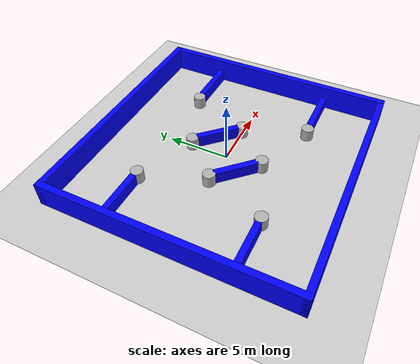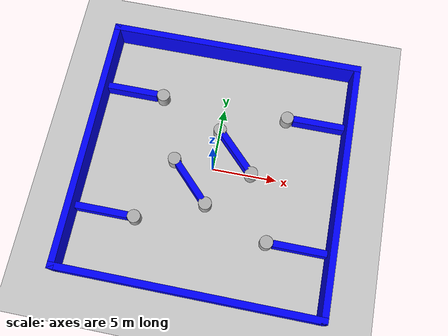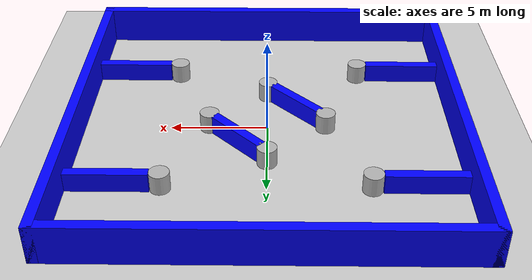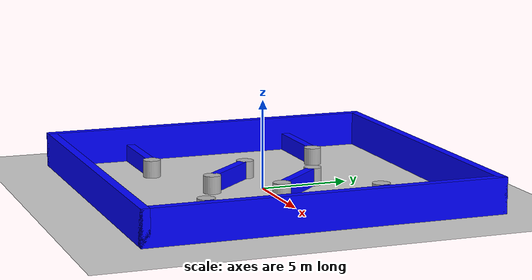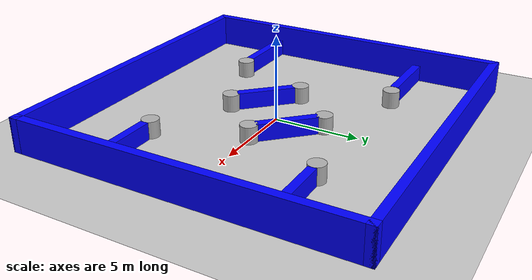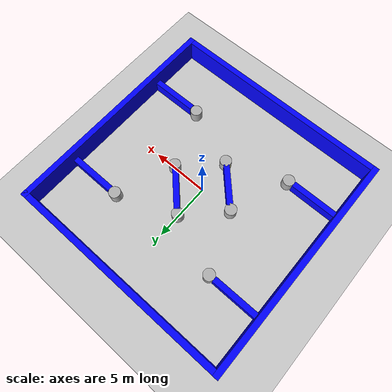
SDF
<sdf version='1.10'>
  <world name='empty'>
    <physics name='1ms' type='ignored'>
      <max_step_size>0.001</max_step_size>
      <real_time_factor>1</real_time_factor>
      <real_time_update_rate>1000</real_time_update_rate>
    </physics>
    <plugin name='gz::sim::systems::Physics' filename='gz-sim-physics-system'/>
    <plugin name='gz::sim::systems::UserCommands' filename='gz-sim-user-commands-system'/>
    <plugin name='gz::sim::systems::SceneBroadcaster' filename='gz-sim-scene-broadcaster-system'/>
    <plugin name='gz::sim::systems::Contact' filename='gz-sim-contact-system'/>
    <gravity>0 0 -9.8000000000000007</gravity>
    <magnetic_field>5.5644999999999998e-06 2.2875799999999999e-05 -4.2388400000000002e-05</magnetic_field>
    <atmosphere type='adiabatic'/>
    <scene>
      <ambient>0.400000006 0.400000006 0.400000006 1</ambient>
      <background>0.699999988 0.699999988 0.699999988 1</background>
      <shadows>true</shadows>
    </scene>

    <model name='ground_plane'>
      <static>true</static>
      <link name='link'>
        <collision name='collision'>
          <geometry>
            <plane>
              <normal>0 0 1</normal>
              <size>100 100</size>
            </plane>
          </geometry>
          <surface>
            <friction>
              <ode/>
            </friction>
            <bounce/>
            <contact/>
          </surface>
        </collision>
        <visual name='visual'>
          <geometry>
            <plane>
              <normal>0 0 1</normal>
              <size>100 100</size>
            </plane>
          </geometry>
          <material>
            <ambient>0.800000012 0.800000012 0.800000012 1</ambient>
            <diffuse>0.800000012 0.800000012 0.800000012 1</diffuse>
            <specular>0.800000012 0.800000012 0.800000012 1</specular>
          </material>
        </visual>
        <pose>0 0 0 0 0 0</pose>
        <inertial>
          <pose>0 0 0 0 0 0</pose>
          <mass>1</mass>
          <inertia>
            <ixx>1</ixx>
            <ixy>0</ixy>
            <ixz>0</ixz>
            <iyy>1</iyy>
            <iyz>0</iyz>
            <izz>1</izz>
          </inertia>
        </inertial>
        <enable_wind>false</enable_wind>
      </link>
      <pose>0 0 0 0 0 0</pose>
      <self_collide>false</self_collide>
    </model>

    <!--Boundary Walls-->
    <model name='wall_0'>
        <static>true</static>
        <pose>9.75 0 1 0 0 0</pose>
        <link name='box'>
            <pose/>
            <inertial>
                <mass>1.14395</mass>
                <inertia>
                    <ixx>9.532917</ixx>
                    <ixy>0</ixy>
                    <ixz>0</ixz>
                    <iyy>0.023832</iyy>
                    <iyz>0</iyz>
                    <izz>9.556749</izz>
                </inertia>
            </inertial>
            <visual name='visual'>
                <geometry>
                    <box>
                        <size>0.5 20.0 2.0</size>
                    </box>
                </geometry>
                <material>
                    <ambient>0.0 0.0 1.0 1</ambient>
                    <diffuse>0.0 0.0 1.0 1</diffuse>
                    <specular>0.0 0.0 1.0 1</specular>
                </material>
            </visual>
            <collision name='collision'>
                <geometry>
                    <box>
                        <size>0.5 20.0 2.0</size>
                    </box>
                </geometry>
            </collision>
        </link>
    </model>

    <model name='wall_1'>
        <static>true</static>
        <pose>-9.75 0 1 0 0 0</pose>
        <link name='box'>
            <pose/>
            <inertial>
                <mass>1.14395</mass>
                <inertia>
                    <ixx>9.532917</ixx>
                    <ixy>0</ixy>
                    <ixz>0</ixz>
                    <iyy>0.023832</iyy>
                    <iyz>0</iyz>
                    <izz>9.556749</izz>
                </inertia>
            </inertial>
            <visual name='visual'>
                <geometry>
                    <box>
                        <size>0.5 20.0 2.0</size>
                    </box>
                </geometry>
                <material>
                    <ambient>0.0 0.0 1.0 1</ambient>
                    <diffuse>0.0 0.0 1.0 1</diffuse>
                    <specular>0.0 0.0 1.0 1</specular>
                </material>
            </visual>
            <collision name='collision'>
                <geometry>
                    <box>
                        <size>0.5 20.0 2.0</size>
                    </box>
                </geometry>
            </collision>
        </link>
    </model>

    <model name='wall_2'>
        <static>true</static>
        <pose>0 9.75 1 0 0 0</pose>
        <link name='box'>
            <pose/>
            <inertial>
                <mass>1.14395</mass>
                <inertia>
                    <ixx>9.532917</ixx>
                    <ixy>0</ixy>
                    <ixz>0</ixz>
                    <iyy>0.023832</iyy>
                    <iyz>0</iyz>
                    <izz>9.556749</izz>
                </inertia>
            </inertial>
            <visual name='visual'>
                <geometry>
                    <box>
                        <size>20.0 0.5 2.0</size>
                    </box>
                </geometry>
                <material>
                    <ambient>0.0 0.0 1.0 1</ambient>
                    <diffuse>0.0 0.0 1.0 1</diffuse>
                    <specular>0.0 0.0 1.0 1</specular>
                </material>
            </visual>
            <collision name='collision'>
                <geometry>
                    <box>
                        <size>20.0 0.5 2.0</size>
                    </box>
                </geometry>
            </collision>
        </link>
    </model>

    <model name='wall_3'>
        <static>true</static>
        <pose>0 -9.75 1 0 0 0</pose>
        <link name='box'>
            <pose/>
            <inertial>
                <mass>1.14395</mass>
                <inertia>
                    <ixx>9.532917</ixx>
                    <ixy>0</ixy>
                    <ixz>0</ixz>
                    <iyy>0.023832</iyy>
                    <iyz>0</iyz>
                    <izz>9.556749</izz>
                </inertia>
            </inertial>
            <visual name='visual'>
                <geometry>
                    <box>
                        <size>20.0 0.5 2.0</size>
                    </box>
                </geometry>
                <material>
                    <ambient>0.0 0.0 1.0 1</ambient>
                    <diffuse>0.0 0.0 1.0 1</diffuse>
                    <specular>0.0 0.0 1.0 1</specular>
                </material>
            </visual>
            <collision name='collision'>
                <geometry>
                    <box>
                        <size>20.0 0.5 2.0</size>
                    </box>
                </geometry>
            </collision>
        </link>
    </model>

    <!--obstacles-->
    <model name='cylinder_0'>
      <pose>3 0 0.5 0 0 0</pose>
      <link name='cylinder_link'>
        <inertial>
          <inertia>
            <ixx>0.14580000000000001</ixx>
            <ixy>0</ixy>
            <ixz>0</ixz>
            <iyy>0.14580000000000001</iyy>
            <iyz>0</iyz>
            <izz>0.125</izz>
          </inertia>
          <mass>1</mass>
          <pose>0 0 0 0 0 0</pose>
        </inertial>
        <collision name='cylinder_collision'>
          <geometry>
            <cylinder>
              <radius>0.5</radius>
              <length>1</length>
            </cylinder>
          </geometry>
          <surface>
            <friction>
              <ode/>
            </friction>
            <bounce/>
            <contact/>
          </surface>
        </collision>
        <visual name='cylinder_visual'>
          <geometry>
            <cylinder>
              <radius>0.5</radius>
              <length>1</length>
            </cylinder>
          </geometry>
          <material>
            <ambient>0.300000012 0.300000012 0.300000012 1</ambient>
            <diffuse>0.699999988 0.699999988 0.699999988 1</diffuse>
            <specular>1 1 1 1</specular>
          </material>
        </visual>
        <pose>0 0 0 0 0 0</pose>
        <enable_wind>false</enable_wind>
      </link>
      <static>true</static>
      <self_collide>false</self_collide>
    </model>

    <model name='cylinder_1'>
      <pose>-3 0 0.5 0 0 0</pose>
      <link name='cylinder_link'>
        <inertial>
          <inertia>
            <ixx>0.14580000000000001</ixx>
            <ixy>0</ixy>
            <ixz>0</ixz>
            <iyy>0.14580000000000001</iyy>
            <iyz>0</iyz>
            <izz>0.125</izz>
          </inertia>
          <mass>1</mass>
          <pose>0 0 0 0 0 0</pose>
        </inertial>
        <collision name='cylinder_collision'>
          <geometry>
            <cylinder>
              <radius>0.5</radius>
              <length>1</length>
            </cylinder>
          </geometry>
          <surface>
            <friction>
              <ode/>
            </friction>
            <bounce/>
            <contact/>
          </surface>
        </collision>
        <visual name='cylinder_visual'>
          <geometry>
            <cylinder>
              <radius>0.5</radius>
              <length>1</length>
            </cylinder>
          </geometry>
          <material>
            <ambient>0.300000012 0.300000012 0.300000012 1</ambient>
            <diffuse>0.699999988 0.699999988 0.699999988 1</diffuse>
            <specular>1 1 1 1</specular>
          </material>
        </visual>
        <pose>0 0 0 0 0 0</pose>
        <enable_wind>false</enable_wind>
      </link>
      <static>true</static>
      <self_collide>false</self_collide>
    </model>

    <model name='cylinder_2'>
      <pose>0 -3 0.5 0 0 0</pose>
      <link name='cylinder_link'>
        <inertial>
          <inertia>
            <ixx>0.14580000000000001</ixx>
            <ixy>0</ixy>
            <ixz>0</ixz>
            <iyy>0.14580000000000001</iyy>
            <iyz>0</iyz>
            <izz>0.125</izz>
          </inertia>
          <mass>1</mass>
          <pose>0 0 0 0 0 0</pose>
        </inertial>
        <collision name='cylinder_collision'>
          <geometry>
            <cylinder>
              <radius>0.5</radius>
              <length>1</length>
            </cylinder>
          </geometry>
          <surface>
            <friction>
              <ode/>
            </friction>
            <bounce/>
            <contact/>
          </surface>
        </collision>
        <visual name='cylinder_visual'>
          <geometry>
            <cylinder>
              <radius>0.5</radius>
              <length>1</length>
            </cylinder>
          </geometry>
          <material>
            <ambient>0.300000012 0.300000012 0.300000012 1</ambient>
            <diffuse>0.699999988 0.699999988 0.699999988 1</diffuse>
            <specular>1 1 1 1</specular>
          </material>
        </visual>
        <pose>0 0 0 0 0 0</pose>
        <enable_wind>false</enable_wind>
      </link>
      <static>true</static>
      <self_collide>false</self_collide>
    </model>

    <model name='cylinder_3'>
      <pose>0 3 0.5 0 0 0</pose>
      <link name='cylinder_link'>
        <inertial>
          <inertia>
            <ixx>0.14580000000000001</ixx>
            <ixy>0</ixy>
            <ixz>0</ixz>
            <iyy>0.14580000000000001</iyy>
            <iyz>0</iyz>
            <izz>0.125</izz>
          </inertia>
          <mass>1</mass>
          <pose>0 0 0 0 0 0</pose>
        </inertial>
        <collision name='cylinder_collision'>
          <geometry>
            <cylinder>
              <radius>0.5</radius>
              <length>1</length>
            </cylinder>
          </geometry>
          <surface>
            <friction>
              <ode/>
            </friction>
            <bounce/>
            <contact/>
          </surface>
        </collision>
        <visual name='cylinder_visual'>
          <geometry>
            <cylinder>
              <radius>0.5</radius>
              <length>1</length>
            </cylinder>
          </geometry>
          <material>
            <ambient>0.300000012 0.300000012 0.300000012 1</ambient>
            <diffuse>0.699999988 0.699999988 0.699999988 1</diffuse>
            <specular>1 1 1 1</specular>
          </material>
        </visual>
        <pose>0 0 0 0 0 0</pose>
        <enable_wind>false</enable_wind>
      </link>
      <static>true</static>
      <self_collide>false</self_collide>
    </model>

    <model name='cylinder_4'>
      <pose>5 -5 0.5 0 0 0</pose>
      <link name='cylinder_link'>
        <inertial>
          <inertia>
            <ixx>0.14580000000000001</ixx>
            <ixy>0</ixy>
            <ixz>0</ixz>
            <iyy>0.14580000000000001</iyy>
            <iyz>0</iyz>
            <izz>0.125</izz>
          </inertia>
          <mass>1</mass>
          <pose>0 0 0 0 0 0</pose>
        </inertial>
        <collision name='cylinder_collision'>
          <geometry>
            <cylinder>
              <radius>0.5</radius>
              <length>1</length>
            </cylinder>
          </geometry>
          <surface>
            <friction>
              <ode/>
            </friction>
            <bounce/>
            <contact/>
          </surface>
        </collision>
        <visual name='cylinder_visual'>
          <geometry>
            <cylinder>
              <radius>0.5</radius>
              <length>1</length>
            </cylinder>
          </geometry>
          <material>
            <ambient>0.300000012 0.300000012 0.300000012 1</ambient>
            <diffuse>0.699999988 0.699999988 0.699999988 1</diffuse>
            <specular>1 1 1 1</specular>
          </material>
        </visual>
        <pose>0 0 0 0 0 0</pose>
        <enable_wind>false</enable_wind>
      </link>
      <static>true</static>
      <self_collide>false</self_collide>
    </model>

    <model name='cylinder_5'>
      <pose>5 5 0.5 0 0 0</pose>
      <link name='cylinder_link'>
        <inertial>
          <inertia>
            <ixx>0.14580000000000001</ixx>
            <ixy>0</ixy>
            <ixz>0</ixz>
            <iyy>0.14580000000000001</iyy>
            <iyz>0</iyz>
            <izz>0.125</izz>
          </inertia>
          <mass>1</mass>
          <pose>0 0 0 0 0 0</pose>
        </inertial>
        <collision name='cylinder_collision'>
          <geometry>
            <cylinder>
              <radius>0.5</radius>
              <length>1</length>
            </cylinder>
          </geometry>
          <surface>
            <friction>
              <ode/>
            </friction>
            <bounce/>
            <contact/>
          </surface>
        </collision>
        <visual name='cylinder_visual'>
          <geometry>
            <cylinder>
              <radius>0.5</radius>
              <length>1</length>
            </cylinder>
          </geometry>
          <material>
            <ambient>0.300000012 0.300000012 0.300000012 1</ambient>
            <diffuse>0.699999988 0.699999988 0.699999988 1</diffuse>
            <specular>1 1 1 1</specular>
          </material>
        </visual>
        <pose>0 0 0 0 0 0</pose>
        <enable_wind>false</enable_wind>
      </link>
      <static>true</static>
      <self_collide>false</self_collide>
    </model>

    <model name='cylinder_6'>
      <pose>-5 5 0.5 0 0 0</pose>
      <link name='cylinder_link'>
        <inertial>
          <inertia>
            <ixx>0.14580000000000001</ixx>
            <ixy>0</ixy>
            <ixz>0</ixz>
            <iyy>0.14580000000000001</iyy>
            <iyz>0</iyz>
            <izz>0.125</izz>
          </inertia>
          <mass>1</mass>
          <pose>0 0 0 0 0 0</pose>
        </inertial>
        <collision name='cylinder_collision'>
          <geometry>
            <cylinder>
              <radius>0.5</radius>
              <length>1</length>
            </cylinder>
          </geometry>
          <surface>
            <friction>
              <ode/>
            </friction>
            <bounce/>
            <contact/>
          </surface>
        </collision>
        <visual name='cylinder_visual'>
          <geometry>
            <cylinder>
              <radius>0.5</radius>
              <length>1</length>
            </cylinder>
          </geometry>
          <material>
            <ambient>0.300000012 0.300000012 0.300000012 1</ambient>
            <diffuse>0.699999988 0.699999988 0.699999988 1</diffuse>
            <specular>1 1 1 1</specular>
          </material>
        </visual>
        <pose>0 0 0 0 0 0</pose>
        <enable_wind>false</enable_wind>
      </link>
      <static>true</static>
      <self_collide>false</self_collide>
    </model>

    <model name='cylinder_7'>
      <pose>-5 -5 0.5 0 0 0</pose>
      <link name='cylinder_link'>
        <inertial>
          <inertia>
            <ixx>0.14580000000000001</ixx>
            <ixy>0</ixy>
            <ixz>0</ixz>
            <iyy>0.14580000000000001</iyy>
            <iyz>0</iyz>
            <izz>0.125</izz>
          </inertia>
          <mass>1</mass>
          <pose>0 0 0 0 0 0</pose>
        </inertial>
        <collision name='cylinder_collision'>
          <geometry>
            <cylinder>
              <radius>0.5</radius>
              <length>1</length>
            </cylinder>
          </geometry>
          <surface>
            <friction>
              <ode/>
            </friction>
            <bounce/>
            <contact/>
          </surface>
        </collision>
        <visual name='cylinder_visual'>
          <geometry>
            <cylinder>
              <radius>0.5</radius>
              <length>1</length>
            </cylinder>
          </geometry>
          <material>
            <ambient>0.300000012 0.300000012 0.300000012 1</ambient>
            <diffuse>0.699999988 0.699999988 0.699999988 1</diffuse>
            <specular>1 1 1 1</specular>
          </material>
        </visual>
        <pose>0 0 0 0 0 0</pose>
        <enable_wind>false</enable_wind>
      </link>
      <static>true</static>
      <self_collide>false</self_collide>
    </model>

    <model name='wall_4'>
        <static>true</static>
        <pose>7.5 5 0.5 0 0 0</pose>
        <link name='box'>
            <pose/>
            <inertial>
                <mass>1.14395</mass>
                <inertia>
                    <ixx>9.532917</ixx>
                    <ixy>0</ixy>
                    <ixz>0</ixz>
                    <iyy>0.023832</iyy>
                    <iyz>0</iyz>
                    <izz>9.556749</izz>
                </inertia>
            </inertial>
            <visual name='visual'>
                <geometry>
                    <box>
                        <size>4.0 0.5 1.0</size>
                    </box>
                </geometry>
                <material>
                    <ambient>0.0 0.0 1.0 1</ambient>
                    <diffuse>0.0 0.0 1.0 1</diffuse>
                    <specular>0.0 0.0 1.0 1</specular>
                </material>
            </visual>
            <collision name='collision'>
                <geometry>
                    <box>
                        <size>5.0 0.5 2.0</size>
                    </box>
                </geometry>
            </collision>
        </link>
    </model>

    <model name='wall_5'>
        <static>true</static>
        <pose>-7.5 5 0.5 0 0 0</pose>
        <link name='box'>
            <pose/>
            <inertial>
                <mass>1.14395</mass>
                <inertia>
                    <ixx>9.532917</ixx>
                    <ixy>0</ixy>
                    <ixz>0</ixz>
                    <iyy>0.023832</iyy>
                    <iyz>0</iyz>
                    <izz>9.556749</izz>
                </inertia>
            </inertial>
            <visual name='visual'>
                <geometry>
                    <box>
                        <size>4.0 0.5 1.0</size>
                    </box>
                </geometry>
                <material>
                    <ambient>0.0 0.0 1.0 1</ambient>
                    <diffuse>0.0 0.0 1.0 1</diffuse>
                    <specular>0.0 0.0 1.0 1</specular>
                </material>
            </visual>
            <collision name='collision'>
                <geometry>
                    <box>
                        <size>5.0 0.5 2.0</size>
                    </box>
                </geometry>
            </collision>
        </link>
    </model>

    <model name='wall_6'>
        <static>true</static>
        <pose>7.5 -5 0.5 0 0 0</pose>
        <link name='box'>
            <pose/>
            <inertial>
                <mass>1.14395</mass>
                <inertia>
                    <ixx>9.532917</ixx>
                    <ixy>0</ixy>
                    <ixz>0</ixz>
                    <iyy>0.023832</iyy>
                    <iyz>0</iyz>
                    <izz>9.556749</izz>
                </inertia>
            </inertial>
            <visual name='visual'>
                <geometry>
                    <box>
                        <size>4.0 0.5 1.0</size>
                    </box>
                </geometry>
                <material>
                    <ambient>0.0 0.0 1.0 1</ambient>
                    <diffuse>0.0 0.0 1.0 1</diffuse>
                    <specular>0.0 0.0 1.0 1</specular>
                </material>
            </visual>
            <collision name='collision'>
                <geometry>
                    <box>
                        <size>5.0 0.5 2.0</size>
                    </box>
                </geometry>
            </collision>
        </link>
    </model>

    <model name='wall_7'>
        <static>true</static>
        <pose>-7.5 -5 0.5 0 0 0</pose>
        <link name='box'>
            <pose/>
            <inertial>
                <mass>1.14395</mass>
                <inertia>
                    <ixx>9.532917</ixx>
                    <ixy>0</ixy>
                    <ixz>0</ixz>
                    <iyy>0.023832</iyy>
                    <iyz>0</iyz>
                    <izz>9.556749</izz>
                </inertia>
            </inertial>
            <visual name='visual'>
                <geometry>
                    <box>
                        <size>4.0 0.5 1.0</size>
                    </box>
                </geometry>
                <material>
                    <ambient>0.0 0.0 1.0 1</ambient>
                    <diffuse>0.0 0.0 1.0 1</diffuse>
                    <specular>0.0 0.0 1.0 1</specular>
                </material>
            </visual>
            <collision name='collision'>
                <geometry>
                    <box>
                        <size>5.0 0.5 2.0</size>
                    </box>
                </geometry>
            </collision>
        </link>
    </model>

    <model name='wall_8'>
        <static>true</static>
        <pose>1.5 1.5 0.5 0 0 -0.8</pose>
        <link name='box'>
            <pose/>
            <inertial>
                <mass>1.14395</mass>
                <inertia>
                    <ixx>9.532917</ixx>
                    <ixy>0</ixy>
                    <ixz>0</ixz>
                    <iyy>0.023832</iyy>
                    <iyz>0</iyz>
                    <izz>9.556749</izz>
                </inertia>
            </inertial>
            <visual name='visual'>
                <geometry>
                    <box>
                        <size>3.5 0.5 1.0</size>
                    </box>
                </geometry>
                <material>
                    <ambient>0.0 0.0 1.0 1</ambient>
                    <diffuse>0.0 0.0 1.0 1</diffuse>
                    <specular>0.0 0.0 1.0 1</specular>
                </material>
            </visual>
            <collision name='collision'>
                <geometry>
                    <box>
                        <size>5.0 0.5 2.0</size>
                    </box>
                </geometry>
            </collision>
        </link>
    </model>

    <model name='wall_9'>
        <static>true</static>
        <pose>-1.5 -1.5 0.5 0 0 -0.8</pose>
        <link name='box'>
            <pose/>
            <inertial>
                <mass>1.14395</mass>
                <inertia>
                    <ixx>9.532917</ixx>
                    <ixy>0</ixy>
                    <ixz>0</ixz>
                    <iyy>0.023832</iyy>
                    <iyz>0</iyz>
                    <izz>9.556749</izz>
                </inertia>
            </inertial>
            <visual name='visual'>
                <geometry>
                    <box>
                        <size>3.5 0.5 1.0</size>
                    </box>
                </geometry>
                <material>
                    <ambient>0.0 0.0 1.0 1</ambient>
                    <diffuse>0.0 0.0 1.0 1</diffuse>
                    <specular>0.0 0.0 1.0 1</specular>
                </material>
            </visual>
            <collision name='collision'>
                <geometry>
                    <box>
                        <size>5.0 0.5 2.0</size>
                    </box>
                </geometry>
            </collision>
        </link>
    </model>

    <light name='sun' type='directional'>
      <pose>0 0 10 0 0 0</pose>
      <cast_shadows>true</cast_shadows>
      <intensity>1</intensity>
      <direction>-0.5 0.10000000000000001 -0.90000000000000002</direction>
      <diffuse>0.800000012 0.800000012 0.800000012 1</diffuse>
      <specular>0.200000003 0.200000003 0.200000003 1</specular>
      <attenuation>
        <range>1000</range>
        <linear>0.0099999997764825821</linear>
        <constant>0.89999997615814209</constant>
        <quadratic>0.0010000000474974513</quadratic>
      </attenuation>
      <spot>
        <inner_angle>0</inner_angle>
        <outer_angle>0</outer_angle>
        <falloff>0</falloff>
      </spot>
    </light>
  </world>
</sdf>
